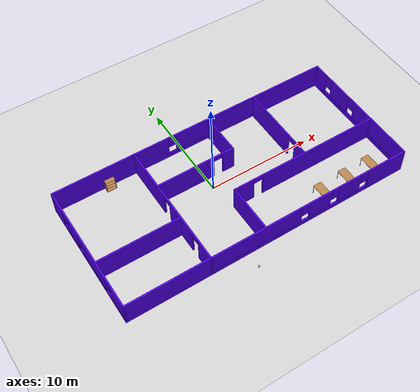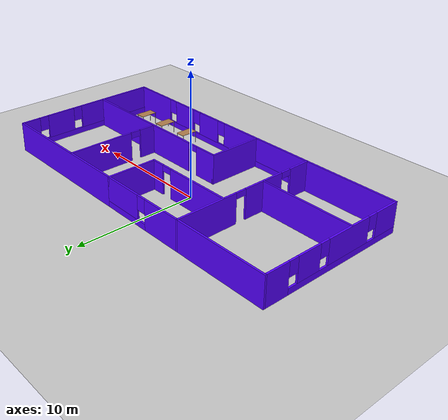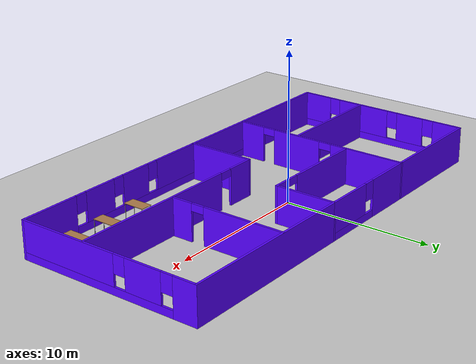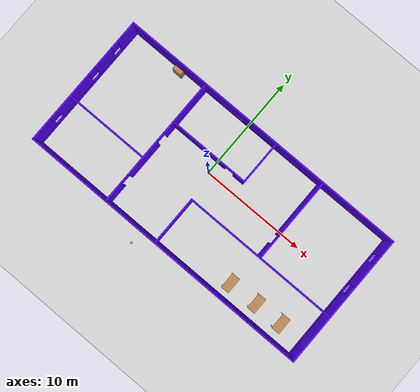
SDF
<sdf version="1.6">
 <world name="default">
  <model name="ground_plane">
   <static>1</static>
   <link name="link">
    <collision name="collision">
     <geometry><plane><normal>0 0 1</normal><size>100 100</size></plane></geometry>
     <surface>
      <contact><collide_bitmask>65535</collide_bitmask></contact>
      <friction><ode><mu>100</mu><mu2>50</mu2></ode></friction>
     </surface>
    </collision>
    <visual name="visual">
     <cast_shadows>0</cast_shadows>
     <geometry><plane><normal>0 0 1</normal><size>100 100</size></plane></geometry>
     <material>
      <script><uri>file://media/materials/scripts/gazebo.material</uri><name>Gazebo/Grey</name></script>
     </material>
    </visual>
   </link>
  </model>
  <model name="mybuilding">
   <pose>1.28184 -1.00134 0 0 -0 0</pose>
   <link name="Wall_10">
    <collision name="Wall_10_Collision">
     <geometry><box><size>4.25 0.15 2.5</size></box></geometry>
     <pose>0 0 1.25 0 -0 0</pose>
    </collision>
    <visual name="Wall_10_Visual">
     <pose>0 0 1.25 0 -0 0</pose>
     <geometry><box><size>4.25 0.15 2.5</size></box></geometry>
     <material>
      <script><uri>file://media/materials/scripts/gazebo.material</uri><name>Gazebo/Grey</name></script>
      <ambient>0.333333 0 1 1</ambient>
     </material>
     <meta><layer>0</layer></meta>
    </visual>
    <pose>1.55 4.25 0 0 0 -1.5708</pose>
   </link>
   <link name="Wall_11">
    <pose>-2.25 2.2 0 0 -0 3.14159</pose>
    <visual name="Wall_11_Visual_0">
     <pose>-3.29403 0 1.25 0 -0 0</pose>
     <geometry><box><size>1.16194 0.15 2.5</size></box></geometry>
     <material>
      <script><uri>file://media/materials/scripts/gazebo.material</uri><name>Gazebo/Grey</name></script>
      <ambient>0.333333 0 1 1</ambient>
     </material>
     <meta><layer>0</layer></meta>
    </visual>
    <collision name="Wall_11_Collision_0">
     <geometry><box><size>1.16194 0.15 2.5</size></box></geometry>
     <pose>-3.29403 0 1.25 0 -0 0</pose>
    </collision>
    <visual name="Wall_11_Visual_1">
     <pose>1.03097 0 1.25 0 -0 0</pose>
     <geometry><box><size>5.68806 0.15 2.5</size></box></geometry>
     <material>
      <script><uri>file://media/materials/scripts/gazebo.material</uri><name>Gazebo/Grey</name></script>
      <ambient>0.333333 0 1 1</ambient>
     </material>
     <meta><layer>0</layer></meta>
    </visual>
    <collision name="Wall_11_Collision_1">
     <geometry><box><size>5.68806 0.15 2.5</size></box></geometry>
     <pose>1.03097 0 1.25 0 -0 0</pose>
    </collision>
    <visual name="Wall_11_Visual_2">
     <pose>-2.26306 0 2.25 0 -0 0</pose>
     <geometry><box><size>0.9 0.15 0.5</size></box></geometry>
     <material>
      <script><uri>file://media/materials/scripts/gazebo.material</uri><name>Gazebo/Grey</name></script>
      <ambient>0.333333 0 1 1</ambient>
     </material>
     <meta><layer>0</layer></meta>
    </visual>
    <collision name="Wall_11_Collision_2">
     <geometry><box><size>0.9 0.15 0.5</size></box></geometry>
     <pose>-2.26306 0 2.25 0 -0 0</pose>
    </collision>
   </link>
   <link name="Wall_13">
    <collision name="Wall_13_Collision">
     <geometry><box><size>12.5 0.15 2.5</size></box></geometry>
     <pose>0 0 1.25 0 -0 0</pose>
    </collision>
    <visual name="Wall_13_Visual">
     <pose>0 0 1.25 0 -0 0</pose>
     <geometry><box><size>12.5 0.15 2.5</size></box></geometry>
     <material>
      <script><uri>file://media/materials/scripts/gazebo.material</uri><name>Gazebo/Grey</name></script>
      <ambient>0.333333 0 1 1</ambient>
     </material>
     <meta><layer>0</layer></meta>
    </visual>
    <pose>7.725 6.3 0 0 -0 0</pose>
   </link>
   <link name="Wall_14">
    <pose>13.9 0 0 0 0 -1.5708</pose>
    <visual name="Wall_14_Visual_0">
     <pose>-5.56601 0 1.25 0 -0 0</pose>
     <geometry><box><size>1.61797 0.15 2.5</size></box></geometry>
     <material>
      <script><uri>file://media/materials/scripts/gazebo.material</uri><name>Gazebo/Grey</name></script>
      <ambient>0.333333 0 1 1</ambient>
     </material>
     <meta><layer>0</layer></meta>
    </visual>
    <collision name="Wall_14_Collision_0">
     <geometry><box><size>1.61797 0.15 2.5</size></box></geometry>
     <pose>-5.56601 0 1.25 0 -0 0</pose>
    </collision>
    <visual name="Wall_14_Visual_1">
     <pose>0.808986 0 0.25 0 -0 0</pose>
     <geometry><box><size>11.132 0.15 0.5</size></box></geometry>
     <material>
      <script><uri>file://media/materials/scripts/gazebo.material</uri><name>Gazebo/Grey</name></script>
      <ambient>0.333333 0 1 1</ambient>
     </material>
     <meta><layer>0</layer></meta>
    </visual>
    <collision name="Wall_14_Collision_1">
     <geometry><box><size>11.132 0.15 0.5</size></box></geometry>
     <pose>0.808986 0 0.25 0 -0 0</pose>
    </collision>
    <visual name="Wall_14_Visual_2">
     <pose>-2.69163 0 1.5 0 -0 0</pose>
     <geometry><box><size>2.53081 0.15 2</size></box></geometry>
     <material>
      <script><uri>file://media/materials/scripts/gazebo.material</uri><name>Gazebo/Grey</name></script>
      <ambient>0.333333 0 1 1</ambient>
     </material>
     <meta><layer>0</layer></meta>
    </visual>
    <collision name="Wall_14_Collision_2">
     <geometry><box><size>2.53081 0.15 2</size></box></geometry>
     <pose>-2.69163 0 1.5 0 -0 0</pose>
    </collision>
    <visual name="Wall_14_Visual_3">
     <pose>2.87439 0 1.5 0 -0 0</pose>
     <geometry><box><size>7.00122 0.15 2</size></box></geometry>
     <material>
      <script><uri>file://media/materials/scripts/gazebo.material</uri><name>Gazebo/Grey</name></script>
      <ambient>0.333333 0 1 1</ambient>
     </material>
     <meta><layer>0</layer></meta>
    </visual>
    <collision name="Wall_14_Collision_3">
     <geometry><box><size>7.00122 0.15 2</size></box></geometry>
     <pose>2.87439 0 1.5 0 -0 0</pose>
    </collision>
    <visual name="Wall_14_Visual_4">
     <pose>-4.35703 0 1.9 0 -0 0</pose>
     <geometry><box><size>0.8 0.15 1.2</size></box></geometry>
     <material>
      <script><uri>file://media/materials/scripts/gazebo.material</uri><name>Gazebo/Grey</name></script>
      <ambient>0.333333 0 1 1</ambient>
     </material>
     <meta><layer>0</layer></meta>
    </visual>
    <collision name="Wall_14_Collision_4">
     <geometry><box><size>0.8 0.15 1.2</size></box></geometry>
     <pose>-4.35703 0 1.9 0 -0 0</pose>
    </collision>
    <visual name="Wall_14_Visual_5">
     <pose>-1.02622 0 1.9 0 -0 0</pose>
     <geometry><box><size>0.8 0.15 1.2</size></box></geometry>
     <material>
      <script><uri>file://media/materials/scripts/gazebo.material</uri><name>Gazebo/Grey</name></script>
      <ambient>0.333333 0 1 1</ambient>
     </material>
     <meta><layer>0</layer></meta>
    </visual>
    <collision name="Wall_14_Collision_5">
     <geometry><box><size>0.8 0.15 1.2</size></box></geometry>
     <pose>-1.02622 0 1.9 0 -0 0</pose>
    </collision>
   </link>
   <link name="Wall_15">
    <pose>3.925 -6.3 0 0 -0 3.14159</pose>
    <visual name="Wall_15_Visual_0">
     <pose>-8.00502 0 1.25 0 -0 0</pose>
     <geometry><box><size>4.08996 0.15 2.5</size></box></geometry>
     <material>
      <script><uri>file://media/materials/scripts/gazebo.material</uri><name>Gazebo/Grey</name></script>
      <ambient>0.333333 0 1 1</ambient>
     </material>
     <meta><layer>0</layer></meta>
    </visual>
    <collision name="Wall_15_Collision_0">
     <geometry><box><size>4.08996 0.15 2.5</size></box></geometry>
     <pose>-8.00502 0 1.25 0 -0 0</pose>
    </collision>
    <visual name="Wall_15_Visual_1">
     <pose>2.04498 0 0.25 0 -0 0</pose>
     <geometry><box><size>16.01 0.15 0.5</size></box></geometry>
     <material>
      <script><uri>file://media/materials/scripts/gazebo.material</uri><name>Gazebo/Grey</name></script>
      <ambient>0.333333 0 1 1</ambient>
     </material>
     <meta><layer>0</layer></meta>
    </visual>
    <collision name="Wall_15_Collision_1">
     <geometry><box><size>16.01 0.15 0.5</size></box></geometry>
     <pose>2.04498 0 0.25 0 -0 0</pose>
    </collision>
    <visual name="Wall_15_Visual_2">
     <pose>-3.98138 0 1.5 0 -0 0</pose>
     <geometry><box><size>2.35733 0.15 2</size></box></geometry>
     <material>
      <script><uri>file://media/materials/scripts/gazebo.material</uri><name>Gazebo/Grey</name></script>
      <ambient>0.333333 0 1 1</ambient>
     </material>
     <meta><layer>0</layer></meta>
    </visual>
    <collision name="Wall_15_Collision_2">
     <geometry><box><size>2.35733 0.15 2</size></box></geometry>
     <pose>-3.98138 0 1.5 0 -0 0</pose>
    </collision>
    <visual name="Wall_15_Visual_3">
     <pose>-0.876096 0 1.5 0 -0 0</pose>
     <geometry><box><size>2.25324 0.15 2</size></box></geometry>
     <material>
      <script><uri>file://media/materials/scripts/gazebo.material</uri><name>Gazebo/Grey</name></script>
      <ambient>0.333333 0 1 1</ambient>
     </material>
     <meta><layer>0</layer></meta>
    </visual>
    <collision name="Wall_15_Collision_3">
     <geometry><box><size>2.25324 0.15 2</size></box></geometry>
     <pose>-0.876096 0 1.5 0 -0 0</pose>
    </collision>
    <visual name="Wall_15_Visual_4">
     <pose>5.55026 0 1.5 0 -0 0</pose>
     <geometry><box><size>8.99948 0.15 2</size></box></geometry>
     <material>
      <script><uri>file://media/materials/scripts/gazebo.material</uri><name>Gazebo/Grey</name></script>
      <ambient>0.333333 0 1 1</ambient>
     </material>
     <meta><layer>0</layer></meta>
    </visual>
    <collision name="Wall_15_Collision_4">
     <geometry><box><size>8.99948 0.15 2</size></box></geometry>
     <pose>5.55026 0 1.5 0 -0 0</pose>
    </collision>
    <visual name="Wall_15_Visual_5">
     <pose>-5.56004 0 1.9 0 -0 0</pose>
     <geometry><box><size>0.8 0.15 1.2</size></box></geometry>
     <material>
      <script><uri>file://media/materials/scripts/gazebo.material</uri><name>Gazebo/Grey</name></script>
      <ambient>0.333333 0 1 1</ambient>
     </material>
     <meta><layer>0</layer></meta>
    </visual>
    <collision name="Wall_15_Collision_5">
     <geometry><box><size>0.8 0.15 1.2</size></box></geometry>
     <pose>-5.56004 0 1.9 0 -0 0</pose>
    </collision>
    <visual name="Wall_15_Visual_6">
     <pose>-2.40272 0 1.9 0 -0 0</pose>
     <geometry><box><size>0.8 0.15 1.2</size></box></geometry>
     <material>
      <script><uri>file://media/materials/scripts/gazebo.material</uri><name>Gazebo/Grey</name></script>
      <ambient>0.333333 0 1 1</ambient>
     </material>
     <meta><layer>0</layer></meta>
    </visual>
    <collision name="Wall_15_Collision_6">
     <geometry><box><size>0.8 0.15 1.2</size></box></geometry>
     <pose>-2.40272 0 1.9 0 -0 0</pose>
    </collision>
    <visual name="Wall_15_Visual_7">
     <pose>0.650524 0 1.9 0 -0 0</pose>
     <geometry><box><size>0.8 0.15 1.2</size></box></geometry>
     <material>
      <script><uri>file://media/materials/scripts/gazebo.material</uri><name>Gazebo/Grey</name></script>
      <ambient>0.333333 0 1 1</ambient>
     </material>
     <meta><layer>0</layer></meta>
    </visual>
    <collision name="Wall_15_Collision_7">
     <geometry><box><size>0.8 0.15 1.2</size></box></geometry>
     <pose>0.650524 0 1.9 0 -0 0</pose>
    </collision>
   </link>
   <link name="Wall_17">
    <collision name="Wall_17_Collision">
     <geometry><box><size>4.75 0.15 2.5</size></box></geometry>
     <pose>0 0 1.25 0 -0 0</pose>
    </collision>
    <visual name="Wall_17_Visual">
     <pose>0 0 1.25 0 -0 0</pose>
     <geometry><box><size>4.75 0.15 2.5</size></box></geometry>
     <material>
      <script><uri>file://media/materials/scripts/gazebo.material</uri><name>Gazebo/Grey</name></script>
      <ambient>0.333333 0 1 1</ambient>
     </material>
     <meta><layer>0</layer></meta>
    </visual>
    <pose>-0.784945 -3.99462 0 0 -0 1.5708</pose>
   </link>
   <link name="Wall_18">
    <pose>6.51506 -1.69462 0 0 -0 0</pose>
    <visual name="Wall_18_Visual_0">
     <pose>-6.36549 0 1.25 0 -0 0</pose>
     <geometry><box><size>2.01902 0.15 2.5</size></box></geometry>
     <material>
      <script><uri>file://media/materials/scripts/gazebo.material</uri><name>Gazebo/Grey</name></script>
      <ambient>0.333333 0 1 1</ambient>
     </material>
     <meta><layer>0</layer></meta>
    </visual>
    <collision name="Wall_18_Collision_0">
     <geometry><box><size>2.01902 0.15 2.5</size></box></geometry>
     <pose>-6.36549 0 1.25 0 -0 0</pose>
    </collision>
    <visual name="Wall_18_Visual_1">
     <pose>1.45951 0 1.25 0 -0 0</pose>
     <geometry><box><size>11.831 0.15 2.5</size></box></geometry>
     <material>
      <script><uri>file://media/materials/scripts/gazebo.material</uri><name>Gazebo/Grey</name></script>
      <ambient>0.333333 0 1 1</ambient>
     </material>
     <meta><layer>0</layer></meta>
    </visual>
    <collision name="Wall_18_Collision_1">
     <geometry><box><size>11.831 0.15 2.5</size></box></geometry>
     <pose>1.45951 0 1.25 0 -0 0</pose>
    </collision>
    <visual name="Wall_18_Visual_2">
     <pose>-4.90598 0 2.25 0 -0 0</pose>
     <geometry><box><size>0.9 0.15 0.5</size></box></geometry>
     <material>
      <script><uri>file://media/materials/scripts/gazebo.material</uri><name>Gazebo/Grey</name></script>
      <ambient>0.333333 0 1 1</ambient>
     </material>
     <meta><layer>0</layer></meta>
    </visual>
    <collision name="Wall_18_Collision_2">
     <geometry><box><size>0.9 0.15 0.5</size></box></geometry>
     <pose>-4.90598 0 2.25 0 -0 0</pose>
    </collision>
   </link>
   <link name="Wall_2">
    <pose>-13.9 0 0 0 0 -1.5708</pose>
    <visual name="Wall_2_Visual_0">
     <pose>-5.32314 0 1.25 0 -0 0</pose>
     <geometry><box><size>2.10371 0.15 2.5</size></box></geometry>
     <material>
      <script><uri>file://media/materials/scripts/gazebo.material</uri><name>Gazebo/Grey</name></script>
      <ambient>0.333333 0 1 1</ambient>
     </material>
     <meta><layer>0</layer></meta>
    </visual>
    <collision name="Wall_2_Collision_0">
     <geometry><box><size>2.10371 0.15 2.5</size></box></geometry>
     <pose>-5.32314 0 1.25 0 -0 0</pose>
    </collision>
    <visual name="Wall_2_Visual_1">
     <pose>1.05186 0 0.25 0 -0 0</pose>
     <geometry><box><size>10.6463 0.15 0.5</size></box></geometry>
     <material>
      <script><uri>file://media/materials/scripts/gazebo.material</uri><name>Gazebo/Grey</name></script>
      <ambient>0.333333 0 1 1</ambient>
     </material>
     <meta><layer>0</layer></meta>
    </visual>
    <collision name="Wall_2_Collision_1">
     <geometry><box><size>10.6463 0.15 0.5</size></box></geometry>
     <pose>1.05186 0 0.25 0 -0 0</pose>
    </collision>
    <visual name="Wall_2_Visual_2">
     <pose>-2.44875 0 1.5 0 -0 0</pose>
     <geometry><box><size>2.04506 0.15 2</size></box></geometry>
     <material>
      <script><uri>file://media/materials/scripts/gazebo.material</uri><name>Gazebo/Grey</name></script>
      <ambient>0.333333 0 1 1</ambient>
     </material>
     <meta><layer>0</layer></meta>
    </visual>
    <collision name="Wall_2_Collision_2">
     <geometry><box><size>2.04506 0.15 2</size></box></geometry>
     <pose>-2.44875 0 1.5 0 -0 0</pose>
    </collision>
    <visual name="Wall_2_Visual_3">
     <pose>1.3678 0 1.5 0 -0 0</pose>
     <geometry><box><size>3.98804 0.15 2</size></box></geometry>
     <material>
      <script><uri>file://media/materials/scripts/gazebo.material</uri><name>Gazebo/Grey</name></script>
      <ambient>0.333333 0 1 1</ambient>
     </material>
     <meta><layer>0</layer></meta>
    </visual>
    <collision name="Wall_2_Collision_3">
     <geometry><box><size>3.98804 0.15 2</size></box></geometry>
     <pose>1.3678 0 1.5 0 -0 0</pose>
    </collision>
    <visual name="Wall_2_Visual_4">
     <pose>5.26841 0 1.5 0 -0 0</pose>
     <geometry><box><size>2.21319 0.15 2</size></box></geometry>
     <material>
      <script><uri>file://media/materials/scripts/gazebo.material</uri><name>Gazebo/Grey</name></script>
      <ambient>0.333333 0 1 1</ambient>
     </material>
     <meta><layer>0</layer></meta>
    </visual>
    <collision name="Wall_2_Collision_4">
     <geometry><box><size>2.21319 0.15 2</size></box></geometry>
     <pose>5.26841 0 1.5 0 -0 0</pose>
    </collision>
    <visual name="Wall_2_Visual_5">
     <pose>-3.87129 0 1.9 0 -0 0</pose>
     <geometry><box><size>0.8 0.15 1.2</size></box></geometry>
     <material>
      <script><uri>file://media/materials/scripts/gazebo.material</uri><name>Gazebo/Grey</name></script>
      <ambient>0.333333 0 1 1</ambient>
     </material>
     <meta><layer>0</layer></meta>
    </visual>
    <collision name="Wall_2_Collision_5">
     <geometry><box><size>0.8 0.15 1.2</size></box></geometry>
     <pose>-3.87129 0 1.9 0 -0 0</pose>
    </collision>
    <visual name="Wall_2_Visual_6">
     <pose>-1.02622 0 1.9 0 -0 0</pose>
     <geometry><box><size>0.8 0.15 1.2</size></box></geometry>
     <material>
      <script><uri>file://media/materials/scripts/gazebo.material</uri><name>Gazebo/Grey</name></script>
      <ambient>0.333333 0 1 1</ambient>
     </material>
     <meta><layer>0</layer></meta>
    </visual>
    <collision name="Wall_2_Collision_6">
     <geometry><box><size>0.8 0.15 1.2</size></box></geometry>
     <pose>-1.02622 0 1.9 0 -0 0</pose>
    </collision>
    <visual name="Wall_2_Visual_7">
     <pose>3.76181 0 1.9 0 -0 0</pose>
     <geometry><box><size>0.8 0.15 1.2</size></box></geometry>
     <material>
      <script><uri>file://media/materials/scripts/gazebo.material</uri><name>Gazebo/Grey</name></script>
      <ambient>0.333333 0 1 1</ambient>
     </material>
     <meta><layer>0</layer></meta>
    </visual>
    <collision name="Wall_2_Collision_7">
     <geometry><box><size>0.8 0.15 1.2</size></box></geometry>
     <pose>3.76181 0 1.9 0 -0 0</pose>
    </collision>
   </link>
   <link name="Wall_22">
    <pose>6.53589 2.3403 0 0 0 -1.5708</pose>
    <visual name="Wall_22_Visual_0">
     <pose>-1.16896 0 1.25 0 -0 0</pose>
     <geometry><box><size>5.66209 0.15 2.5</size></box></geometry>
     <material>
      <script><uri>file://media/materials/scripts/gazebo.material</uri><name>Gazebo/Grey</name></script>
      <ambient>0.333333 0 1 1</ambient>
     </material>
     <meta><layer>0</layer></meta>
    </visual>
    <collision name="Wall_22_Collision_0">
     <geometry><box><size>5.66209 0.15 2.5</size></box></geometry>
     <pose>-1.16896 0 1.25 0 -0 0</pose>
    </collision>
    <visual name="Wall_22_Visual_1">
     <pose>3.28104 0 1.25 0 -0 0</pose>
     <geometry><box><size>1.43791 0.15 2.5</size></box></geometry>
     <material>
      <script><uri>file://media/materials/scripts/gazebo.material</uri><name>Gazebo/Grey</name></script>
      <ambient>0.333333 0 1 1</ambient>
     </material>
     <meta><layer>0</layer></meta>
    </visual>
    <collision name="Wall_22_Collision_1">
     <geometry><box><size>1.43791 0.15 2.5</size></box></geometry>
     <pose>3.28104 0 1.25 0 -0 0</pose>
    </collision>
    <visual name="Wall_22_Visual_2">
     <pose>2.11209 0 2.25 0 -0 0</pose>
     <geometry><box><size>0.9 0.15 0.5</size></box></geometry>
     <material>
      <script><uri>file://media/materials/scripts/gazebo.material</uri><name>Gazebo/Grey</name></script>
      <ambient>0.333333 0 1 1</ambient>
     </material>
     <meta><layer>0</layer></meta>
    </visual>
    <collision name="Wall_22_Collision_2">
     <geometry><box><size>0.9 0.15 0.5</size></box></geometry>
     <pose>2.11209 0 2.25 0 -0 0</pose>
    </collision>
   </link>
   <link name="Wall_3">
    <collision name="Wall_3_Collision">
     <geometry><box><size>8 0.15 2.5</size></box></geometry>
     <pose>0 0 1.25 0 -0 0</pose>
    </collision>
    <visual name="Wall_3_Visual">
     <pose>0 0 1.25 0 -0 0</pose>
     <geometry><box><size>8 0.15 2.5</size></box></geometry>
     <material>
      <script><uri>file://media/materials/scripts/gazebo.material</uri><name>Gazebo/Grey</name></script>
      <ambient>0.333333 0 1 1</ambient>
     </material>
     <meta><layer>0</layer></meta>
    </visual>
    <pose>-9.975 -6.3 0 0 -0 0</pose>
   </link>
   <link name="Wall_4">
    <pose>-6.05 0 0 0 -0 1.5708</pose>
    <visual name="Wall_4_Visual_0">
     <pose>-5.3975 0 1.25 0 -0 0</pose>
     <geometry><box><size>1.95501 0.15 2.5</size></box></geometry>
     <material>
      <script><uri>file://media/materials/scripts/gazebo.material</uri><name>Gazebo/Grey</name></script>
      <ambient>0.333333 0 1 1</ambient>
     </material>
     <meta><layer>0</layer></meta>
    </visual>
    <collision name="Wall_4_Collision_0">
     <geometry><box><size>1.95501 0.15 2.5</size></box></geometry>
     <pose>-5.3975 0 1.25 0 -0 0</pose>
    </collision>
    <visual name="Wall_4_Visual_1">
     <pose>-1.69741 0 1.25 0 -0 0</pose>
     <geometry><box><size>3.64516 0.15 2.5</size></box></geometry>
     <material>
      <script><uri>file://media/materials/scripts/gazebo.material</uri><name>Gazebo/Grey</name></script>
      <ambient>0.333333 0 1 1</ambient>
     </material>
     <meta><layer>0</layer></meta>
    </visual>
    <collision name="Wall_4_Collision_1">
     <geometry><box><size>3.64516 0.15 2.5</size></box></geometry>
     <pose>-1.69741 0 1.25 0 -0 0</pose>
    </collision>
    <visual name="Wall_4_Visual_2">
     <pose>3.70009 0 1.25 0 -0 0</pose>
     <geometry><box><size>5.34983 0.15 2.5</size></box></geometry>
     <material>
      <script><uri>file://media/materials/scripts/gazebo.material</uri><name>Gazebo/Grey</name></script>
      <ambient>0.333333 0 1 1</ambient>
     </material>
     <meta><layer>0</layer></meta>
    </visual>
    <collision name="Wall_4_Collision_2">
     <geometry><box><size>5.34983 0.15 2.5</size></box></geometry>
     <pose>3.70009 0 1.25 0 -0 0</pose>
    </collision>
    <visual name="Wall_4_Visual_3">
     <pose>-3.96999 0 2.25 0 -0 0</pose>
     <geometry><box><size>0.9 0.15 0.5</size></box></geometry>
     <material>
      <script><uri>file://media/materials/scripts/gazebo.material</uri><name>Gazebo/Grey</name></script>
      <ambient>0.333333 0 1 1</ambient>
     </material>
     <meta><layer>0</layer></meta>
    </visual>
    <collision name="Wall_4_Collision_3">
     <geometry><box><size>0.9 0.15 0.5</size></box></geometry>
     <pose>-3.96999 0 2.25 0 -0 0</pose>
    </collision>
    <visual name="Wall_4_Visual_4">
     <pose>0.575175 0 2.25 0 -0 0</pose>
     <geometry><box><size>0.9 0.15 0.5</size></box></geometry>
     <material>
      <script><uri>file://media/materials/scripts/gazebo.material</uri><name>Gazebo/Grey</name></script>
      <ambient>0.333333 0 1 1</ambient>
     </material>
     <meta><layer>0</layer></meta>
    </visual>
    <collision name="Wall_4_Collision_4">
     <geometry><box><size>0.9 0.15 0.5</size></box></geometry>
     <pose>0.575175 0 2.25 0 -0 0</pose>
    </collision>
   </link>
   <link name="Wall_5">
    <collision name="Wall_5_Collision">
     <geometry><box><size>8 0.15 2.5</size></box></geometry>
     <pose>0 0 1.25 0 -0 0</pose>
    </collision>
    <visual name="Wall_5_Visual">
     <pose>0 0 1.25 0 -0 0</pose>
     <geometry><box><size>8 0.15 2.5</size></box></geometry>
     <material>
      <script><uri>file://media/materials/scripts/gazebo.material</uri><name>Gazebo/Grey</name></script>
      <ambient>0.333333 0 1 1</ambient>
     </material>
     <meta><layer>0</layer></meta>
    </visual>
    <pose>-9.975 6.3 0 0 -0 3.14159</pose>
   </link>
   <link name="Wall_7">
    <collision name="Wall_7_Collision">
     <geometry><box><size>8 0.15 2.5</size></box></geometry>
     <pose>0 0 1.25 0 -0 0</pose>
    </collision>
    <visual name="Wall_7_Visual">
     <pose>0 0 1.25 0 -0 0</pose>
     <geometry><box><size>8 0.15 2.5</size></box></geometry>
     <material>
      <script><uri>file://media/materials/scripts/gazebo.material</uri><name>Gazebo/Grey</name></script>
      <ambient>0.333333 0 1 1</ambient>
     </material>
     <meta><layer>0</layer></meta>
    </visual>
    <pose>-9.975 -1.64536 0 0 -0 0</pose>
   </link>
   <link name="Wall_9">
    <pose>-2.25 6.3 0 0 -0 0</pose>
    <visual name="Wall_9_Visual_0">
     <pose>-2.13359 0 1.25 0 -0 0</pose>
     <geometry><box><size>3.48283 0.15 2.5</size></box></geometry>
     <material>
      <script><uri>file://media/materials/scripts/gazebo.material</uri><name>Gazebo/Grey</name></script>
      <ambient>0.333333 0 1 1</ambient>
     </material>
     <meta><layer>0</layer></meta>
    </visual>
    <collision name="Wall_9_Collision_0">
     <geometry><box><size>3.48283 0.15 2.5</size></box></geometry>
     <pose>-2.13359 0 1.25 0 -0 0</pose>
    </collision>
    <visual name="Wall_9_Visual_1">
     <pose>1.74141 0 0.25 0 -0 0</pose>
     <geometry><box><size>4.26717 0.15 0.5</size></box></geometry>
     <material>
      <script><uri>file://media/materials/scripts/gazebo.material</uri><name>Gazebo/Grey</name></script>
      <ambient>0.333333 0 1 1</ambient>
     </material>
     <meta><layer>0</layer></meta>
    </visual>
    <collision name="Wall_9_Collision_1">
     <geometry><box><size>4.26717 0.15 0.5</size></box></geometry>
     <pose>1.74141 0 0.25 0 -0 0</pose>
    </collision>
    <visual name="Wall_9_Visual_2">
     <pose>2.14141 0 1.5 0 -0 0</pose>
     <geometry><box><size>3.46717 0.15 2</size></box></geometry>
     <material>
      <script><uri>file://media/materials/scripts/gazebo.material</uri><name>Gazebo/Grey</name></script>
      <ambient>0.333333 0 1 1</ambient>
     </material>
     <meta><layer>0</layer></meta>
    </visual>
    <collision name="Wall_9_Collision_2">
     <geometry><box><size>3.46717 0.15 2</size></box></geometry>
     <pose>2.14141 0 1.5 0 -0 0</pose>
    </collision>
    <visual name="Wall_9_Visual_3">
     <pose>0.007826 0 1.9 0 -0 0</pose>
     <geometry><box><size>0.8 0.15 1.2</size></box></geometry>
     <material>
      <script><uri>file://media/materials/scripts/gazebo.material</uri><name>Gazebo/Grey</name></script>
      <ambient>0.333333 0 1 1</ambient>
     </material>
     <meta><layer>0</layer></meta>
    </visual>
    <collision name="Wall_9_Collision_3">
     <geometry><box><size>0.8 0.15 1.2</size></box></geometry>
     <pose>0.007826 0 1.9 0 -0 0</pose>
    </collision>
   </link>
   <static>1</static>
  </model>
  <model name="table">
   <static>1</static>
   <link name="link">
    <collision name="surface">
     <pose>0 0 1 0 -0 0</pose>
     <geometry><box><size>1.5 0.8 0.03</size></box></geometry>
     <surface><friction><ode><mu>0.6</mu><mu2>0.6</mu2></ode></friction></surface>
    </collision>
    <visual name="visual1">
     <pose>0 0 1 0 -0 0</pose>
     <geometry><box><size>1.5 0.8 0.03</size></box></geometry>
     <material>
      <script><uri>file://media/materials/scripts/gazebo.material</uri><name>Gazebo/Wood</name></script>
     </material>
    </visual>
    <collision name="front_left_leg">
     <pose>0.68 0.38 0.5 0 -0 0</pose>
     <geometry><cylinder><radius>0.02</radius><length>1</length></cylinder></geometry>
    </collision>
    <visual name="front_left_leg">
     <pose>0.68 0.38 0.5 0 -0 0</pose>
     <geometry><cylinder><radius>0.02</radius><length>1</length></cylinder></geometry>
     <material>
      <script><uri>file://media/materials/scripts/gazebo.material</uri><name>Gazebo/Grey</name></script>
     </material>
    </visual>
    <collision name="front_right_leg">
     <pose>0.68 -0.38 0.5 0 -0 0</pose>
     <geometry><cylinder><radius>0.02</radius><length>1</length></cylinder></geometry>
    </collision>
    <visual name="front_right_leg">
     <pose>0.68 -0.38 0.5 0 -0 0</pose>
     <geometry><cylinder><radius>0.02</radius><length>1</length></cylinder></geometry>
     <material>
      <script><uri>file://media/materials/scripts/gazebo.material</uri><name>Gazebo/Grey</name></script>
     </material>
    </visual>
    <collision name="back_right_leg">
     <pose>-0.68 -0.38 0.5 0 -0 0</pose>
     <geometry><cylinder><radius>0.02</radius><length>1</length></cylinder></geometry>
    </collision>
    <visual name="back_right_leg">
     <pose>-0.68 -0.38 0.5 0 -0 0</pose>
     <geometry><cylinder><radius>0.02</radius><length>1</length></cylinder></geometry>
     <material>
      <script><uri>file://media/materials/scripts/gazebo.material</uri><name>Gazebo/Grey</name></script>
     </material>
    </visual>
    <collision name="back_left_leg">
     <pose>-0.68 0.38 0.5 0 -0 0</pose>
     <geometry><cylinder><radius>0.02</radius><length>1</length></cylinder></geometry>
    </collision>
    <visual name="back_left_leg">
     <pose>-0.68 0.38 0.5 0 -0 0</pose>
     <geometry><cylinder><radius>0.02</radius><length>1</length></cylinder></geometry>
     <material>
      <script><uri>file://media/materials/scripts/gazebo.material</uri><name>Gazebo/Grey</name></script>
     </material>
    </visual>
   </link>
   <pose>7.43515 -5.90461 0 0 -0 1.57</pose>
  </model>
  <model name="table_clone">
   <static>1</static>
   <link name="link">
    <collision name="surface">
     <pose>0 0 1 0 -0 0</pose>
     <geometry><box><size>1.5 0.8 0.03</size></box></geometry>
     <surface><friction><ode><mu>0.6</mu><mu2>0.6</mu2></ode></friction></surface>
    </collision>
    <visual name="visual1">
     <pose>0 0 1 0 -0 0</pose>
     <geometry><box><size>1.5 0.8 0.03</size></box></geometry>
     <material>
      <script><uri>file://media/materials/scripts/gazebo.material</uri><name>Gazebo/Wood</name></script>
     </material>
    </visual>
    <collision name="front_left_leg">
     <pose>0.68 0.38 0.5 0 -0 0</pose>
     <geometry><cylinder><radius>0.02</radius><length>1</length></cylinder></geometry>
    </collision>
    <visual name="front_left_leg">
     <pose>0.68 0.38 0.5 0 -0 0</pose>
     <geometry><cylinder><radius>0.02</radius><length>1</length></cylinder></geometry>
     <material>
      <script><uri>file://media/materials/scripts/gazebo.material</uri><name>Gazebo/Grey</name></script>
     </material>
    </visual>
    <collision name="front_right_leg">
     <pose>0.68 -0.38 0.5 0 -0 0</pose>
     <geometry><cylinder><radius>0.02</radius><length>1</length></cylinder></geometry>
    </collision>
    <visual name="front_right_leg">
     <pose>0.68 -0.38 0.5 0 -0 0</pose>
     <geometry><cylinder><radius>0.02</radius><length>1</length></cylinder></geometry>
     <material>
      <script><uri>file://media/materials/scripts/gazebo.material</uri><name>Gazebo/Grey</name></script>
     </material>
    </visual>
    <collision name="back_right_leg">
     <pose>-0.68 -0.38 0.5 0 -0 0</pose>
     <geometry><cylinder><radius>0.02</radius><length>1</length></cylinder></geometry>
    </collision>
    <visual name="back_right_leg">
     <pose>-0.68 -0.38 0.5 0 -0 0</pose>
     <geometry><cylinder><radius>0.02</radius><length>1</length></cylinder></geometry>
     <material>
      <script><uri>file://media/materials/scripts/gazebo.material</uri><name>Gazebo/Grey</name></script>
     </material>
    </visual>
    <collision name="back_left_leg">
     <pose>-0.68 0.38 0.5 0 -0 0</pose>
     <geometry><cylinder><radius>0.02</radius><length>1</length></cylinder></geometry>
    </collision>
    <visual name="back_left_leg">
     <pose>-0.68 0.38 0.5 0 -0 0</pose>
     <geometry><cylinder><radius>0.02</radius><length>1</length></cylinder></geometry>
     <material>
      <script><uri>file://media/materials/scripts/gazebo.material</uri><name>Gazebo/Grey</name></script>
     </material>
    </visual>
   </link>
   <pose>10.1933 -5.79065 0 0 -0 1.57</pose>
  </model>
  <model name="table_clone_clone">
   <static>1</static>
   <link name="link">
    <collision name="surface">
     <pose>0 0 1 0 -0 0</pose>
     <geometry><box><size>1.5 0.8 0.03</size></box></geometry>
     <surface><friction><ode><mu>0.6</mu><mu2>0.6</mu2></ode></friction></surface>
    </collision>
    <visual name="visual1">
     <pose>0 0 1 0 -0 0</pose>
     <geometry><box><size>1.5 0.8 0.03</size></box></geometry>
     <material>
      <script><uri>file://media/materials/scripts/gazebo.material</uri><name>Gazebo/Wood</name></script>
     </material>
    </visual>
    <collision name="front_left_leg">
     <pose>0.68 0.38 0.5 0 -0 0</pose>
     <geometry><cylinder><radius>0.02</radius><length>1</length></cylinder></geometry>
    </collision>
    <visual name="front_left_leg">
     <pose>0.68 0.38 0.5 0 -0 0</pose>
     <geometry><cylinder><radius>0.02</radius><length>1</length></cylinder></geometry>
     <material>
      <script><uri>file://media/materials/scripts/gazebo.material</uri><name>Gazebo/Grey</name></script>
     </material>
    </visual>
    <collision name="front_right_leg">
     <pose>0.68 -0.38 0.5 0 -0 0</pose>
     <geometry><cylinder><radius>0.02</radius><length>1</length></cylinder></geometry>
    </collision>
    <visual name="front_right_leg">
     <pose>0.68 -0.38 0.5 0 -0 0</pose>
     <geometry><cylinder><radius>0.02</radius><length>1</length></cylinder></geometry>
     <material>
      <script><uri>file://media/materials/scripts/gazebo.material</uri><name>Gazebo/Grey</name></script>
     </material>
    </visual>
    <collision name="back_right_leg">
     <pose>-0.68 -0.38 0.5 0 -0 0</pose>
     <geometry><cylinder><radius>0.02</radius><length>1</length></cylinder></geometry>
    </collision>
    <visual name="back_right_leg">
     <pose>-0.68 -0.38 0.5 0 -0 0</pose>
     <geometry><cylinder><radius>0.02</radius><length>1</length></cylinder></geometry>
     <material>
      <script><uri>file://media/materials/scripts/gazebo.material</uri><name>Gazebo/Grey</name></script>
     </material>
    </visual>
    <collision name="back_left_leg">
     <pose>-0.68 0.38 0.5 0 -0 0</pose>
     <geometry><cylinder><radius>0.02</radius><length>1</length></cylinder></geometry>
    </collision>
    <visual name="back_left_leg">
     <pose>-0.68 0.38 0.5 0 -0 0</pose>
     <geometry><cylinder><radius>0.02</radius><length>1</length></cylinder></geometry>
     <material>
      <script><uri>file://media/materials/scripts/gazebo.material</uri><name>Gazebo/Grey</name></script>
     </material>
    </visual>
   </link>
   <pose>12.831 -5.75624 0 0 -0 1.57</pose>
  </model>
  <model name="bookshelf_clone_1">
   <static>1</static>
   <link name="link">
    <inertial><mass>1</mass></inertial>
    <collision name="back">
     <pose>0 0.005 0.6 0 -0 0</pose>
     <geometry><box><size>0.9 0.01 1.2</size></box></geometry>
    </collision>
    <visual name="visual1">
     <pose>0 0.005 0.6 0 -0 0</pose>
     <geometry><box><size>0.9 0.01 1.2</size></box></geometry>
     <material>
      <script><uri>file://media/materials/scripts/gazebo.material</uri><name>Gazebo/Wood</name></script>
     </material>
    </visual>
    <collision name="left_side">
     <pose>0.45 -0.195 0.6 0 -0 0</pose>
     <geometry><box><size>0.02 0.4 1.2</size></box></geometry>
    </collision>
    <visual name="visual2">
     <pose>0.45 -0.195 0.6 0 -0 0</pose>
     <geometry><box><size>0.02 0.4 1.2</size></box></geometry>
     <material>
      <script><uri>file://media/materials/scripts/gazebo.material</uri><name>Gazebo/Wood</name></script>
     </material>
    </visual>
    <collision name="right_side">
     <pose>-0.45 -0.195 0.6 0 -0 0</pose>
     <geometry><box><size>0.02 0.4 1.2</size></box></geometry>
    </collision>
    <visual name="visual3">
     <pose>-0.45 -0.195 0.6 0 -0 0</pose>
     <geometry><box><size>0.02 0.4 1.2</size></box></geometry>
     <material>
      <script><uri>file://media/materials/scripts/gazebo.material</uri><name>Gazebo/Wood</name></script>
     </material>
    </visual>
    <collision name="bottom">
     <pose>0 -0.195 0.03 0 -0 0</pose>
     <geometry><box><size>0.88 0.4 0.06</size></box></geometry>
    </collision>
    <visual name="visual4">
     <pose>0 -0.195 0.03 0 -0 0</pose>
     <geometry><box><size>0.88 0.4 0.06</size></box></geometry>
     <material>
      <script><uri>file://media/materials/scripts/gazebo.material</uri><name>Gazebo/Wood</name></script>
     </material>
    </visual>
    <collision name="top">
     <pose>0 -0.195 1.19 0 -0 0</pose>
     <geometry><box><size>0.88 0.4 0.02</size></box></geometry>
    </collision>
    <visual name="visual5">
     <pose>0 -0.195 1.19 0 -0 0</pose>
     <geometry><box><size>0.88 0.4 0.02</size></box></geometry>
     <material>
      <script><uri>file://media/materials/scripts/gazebo.material</uri><name>Gazebo/Wood</name></script>
     </material>
    </visual>
    <collision name="low_shelf">
     <pose>0 -0.195 0.43 0 -0 0</pose>
     <geometry><box><size>0.88 0.4 0.02</size></box></geometry>
    </collision>
    <visual name="visual6">
     <pose>0 -0.195 0.43 0 -0 0</pose>
     <geometry><box><size>0.88 0.4 0.02</size></box></geometry>
     <material>
      <script><uri>file://media/materials/scripts/gazebo.material</uri><name>Gazebo/Wood</name></script>
     </material>
    </visual>
    <collision name="high_shelf">
     <pose>0 -0.195 0.8 0 -0 0</pose>
     <geometry><box><size>0.88 0.4 0.02</size></box></geometry>
    </collision>
    <visual name="visual7">
     <pose>0 -0.195 0.8 0 -0 0</pose>
     <geometry><box><size>0.88 0.4 0.02</size></box></geometry>
     <material>
      <script><uri>file://media/materials/scripts/gazebo.material</uri><name>Gazebo/Wood</name></script>
     </material>
    </visual>
   </link>
   <pose>-7.54155 5.10862 0 0 -0 0</pose>
  </model>
  <model name="my_ball">
   <link name="link_0">
    <inertial>
     <mass>1</mass>
     <inertia><ixx>0.1</ixx><ixy>0</ixy><ixz>0</ixz><iyy>0.1</iyy><iyz>0</iyz><izz>0.1</izz></inertia>
    </inertial>
    <visual name="visual">
     <geometry><sphere><radius>0.1</radius></sphere></geometry>
     <material>
      <lighting>1</lighting>
      <script><uri>file://media/materials/scripts/gazebo.material</uri><name>Gazebo/Grey</name></script>
      <shader type="pixel"><normal_map>__default__</normal_map></shader>
      <ambient>1 1 1 1</ambient>
      <diffuse>1 1 1 1</diffuse>
      <specular>1 1 1 1</specular>
      <emissive>1 1 1 1</emissive>
     </material>
    </visual>
    <collision name="collision">
     <geometry><sphere><radius>0.1</radius></sphere></geometry>
     <surface>
      <friction>
       <ode><mu>1</mu><mu2>1</mu2><fdir1>0 0 0</fdir1><slip1>0</slip1><slip2>0</slip2></ode>
       <torsional>
        <coefficient>1</coefficient>
        <patch_radius>0</patch_radius>
        <surface_radius>0</surface_radius>
        <use_patch_radius>1</use_patch_radius>
        <ode><slip>0</slip></ode>
       </torsional>
      </friction>
      <bounce><restitution_coefficient>0</restitution_coefficient><threshold>1e+06</threshold></bounce>
      <contact>
       <collide_without_contact>0</collide_without_contact>
       <collide_without_contact_bitmask>1</collide_without_contact_bitmask>
       <collide_bitmask>1</collide_bitmask>
       <ode>
        <soft_cfm>0</soft_cfm>
        <soft_erp>0.2</soft_erp>
        <kp>1e+13</kp>
        <kd>1</kd>
        <max_vel>0.01</max_vel>
        <min_depth>0</min_depth>
       </ode>
       <bullet>
        <split_impulse>1</split_impulse>
        <split_impulse_penetration_threshold>-0.01</split_impulse_penetration_threshold>
        <soft_cfm>0</soft_cfm>
        <soft_erp>0.2</soft_erp>
        <kp>1e+13</kp>
        <kd>1</kd>
       </bullet>
      </contact>
     </surface>
    </collision>
   </link>
   <static>0</static>
   <pose>-1.16192 -8.84061 0.1 0 -0 0</pose>
  </model>
 </world>
</sdf>
